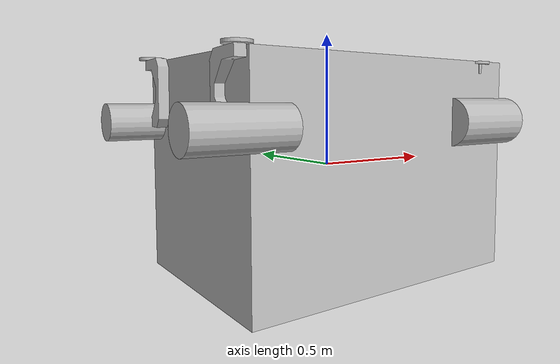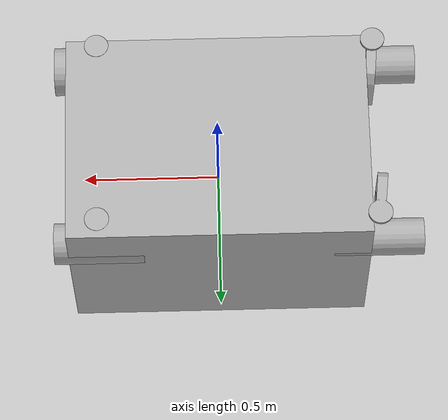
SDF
<sdf version="1.9">
<model name="rover2025" canonical_link="robot_base"> <link name="robot_base">
    <inertial>
      <mass>21.8</mass> <pose>0 0 0.35 0 0 0</pose> <inertia> <ixx>2.21</ixx> <ixy>0.0</ixy> <ixz>0.0</ixz>
        <iyy>3.30</iyy> <iyz>0.0</iyz>
        <izz>3.27</izz>
      </inertia>
    </inertial>
    <collision name="base_collision">
        <pose>0 0 0.39282 0 0 0</pose> <geometry>
            <box><size>1.09671 0.77336 0.78564</size></box>
        </geometry>
        <surface><contact><ode/></contact><friction><ode><mu>1.0</mu><mu2>1.0</mu2></ode></friction></surface>
    </collision>
    <visual name="body">
      <pose>-0.00000 -0.00000 0.00050 -0.00000 0.00000 -0.00000</pose>
      <geometry>
        <box><size>1.09671 0.77336 0.78564</size></box>
      </geometry>
      </visual>
  </link>

  <link name="gps_link">
     <inertial> <mass>0.1</mass> <inertia><ixx>1e-5</ixx><iyy>1e-5</iyy><izz>1e-5</izz></inertia> </inertial>
     <sensor name="gps_sensor" type="gps">
       <always_on>1</always_on>
       <visualize>true</visualize> <update_rate>10</update_rate>
       <plugin name="gps_plugin" filename="libgazebo_ros_gps_sensor.so">
         <ros>
           <namespace>/rover</namespace>
           <topic>/gps/fix</topic>
           <frame_id>gps_link</frame_id>
         </ros>
         </plugin>
     </sensor>
  </link>

  <joint name="gps_joint" type="fixed">
    <pose relative_to="robot_base">0.09323 0.00000 0.65793 0 0 0</pose> <parent>robot_base</parent>
    <child>gps_link</child>
  </joint>

  <link name="imu_link">
    <inertial> <mass>0.1</mass> <inertia><ixx>1e-5</ixx><iyy>1e-5</iyy><izz>1e-5</izz></inertia> </inertial>
    <sensor name="imu_sensor" type="imu">
      <always_on>1</always_on>
      <visualize>true</visualize> <update_rate>100</update_rate>
      <plugin name="imu_plugin" filename="libgazebo_ros_imu_sensor.so">
         <ros>
           <namespace>/rover</namespace>
           <topic>/imu/data</topic>
           <frame_id>imu_link</frame_id>
         </ros>
         <initial_orientation_as_reference>false</initial_orientation_as_reference>
         </plugin>
    </sensor>
  </link>

  <joint name="imu_joint" type="fixed">
    <pose relative_to="robot_base">0.0 0.0 0.43039 0 0 0</pose>
    <parent>robot_base</parent>
    <child>imu_link</child>
  </joint>

  <link name="front_right_steering_link">
    <pose relative_to="robot_base">-0.57753 0.32063 0.32476 0 0 -3.14159</pose>
    <inertial>
      <mass>4.0</mass> <pose>0 0 0 0 0 0</pose> <inertia> <ixx>0.05</ixx> <ixy>0.0</ixy> <ixz>0.0</ixz>
        <iyy>0.05</iyy> <iyz>0.0</iyz>
        <izz>0.05</izz>
      </inertia>
    </inertial>
     <collision name="steering_fr_collision">
        <pose>-0.00377 0.00334 0.07903 0 0 1.57080</pose> <geometry><box><size>0.1 0.1 0.15</size></box></geometry> <surface><contact><ode/></contact><friction><ode><mu>1.0</mu><mu2>1.0</mu2></ode></friction></surface>
    </collision>
    <visual name="bone-r-1">
      <pose>-0.00377 0.00334 0.07903 0.00000 0.00000 1.57080</pose>
      <geometry>
        <mesh><uri>../meshes/stl/Science.422.stl</uri><scale>1 1 1</scale></mesh>
      </geometry>
    </visual>
  </link>

  <joint name="front_right_steering_joint" type="revolute">
    <parent>robot_base</parent>
    <child>front_right_steering_link</child>
    <axis>
      <xyz>0 0 1</xyz>
      <limit>
        <lower>-2.96706</lower>
        <upper>2.96706</upper>
        <effort>100.0</effort> <velocity>10.0</velocity> </limit>
      <dynamics> <damping>0.1</damping> <friction>0.1</friction> </dynamics> </axis>
  </joint>

  <link name="front_right_wheel_link">
      <pose relative_to="front_right_steering_link">0 0 -0.15555 0 0 0</pose>
      <inertial>
        <mass>3.0</mass> <pose>0 0 0 0 1.5708 0</pose> <inertia> <ixx>0.031</ixx> <ixy>0.0</ixy> <ixz>0.0</ixz>
            <iyy>0.007</iyy> <iyz>0.0</iyz>
            <izz>0.031</izz>
        </inertia>
      </inertial>
      <collision name="wheel_fr_collision">
        <pose>0 0 0 0 1.5708 0</pose> <geometry>
          <cylinder><radius>0.06742</radius><length>0.32599</length></cylinder>
        </geometry>
        <surface> <friction><ode><mu>1.2</mu><mu2>1.0</mu2><slip1>0.0</slip1><slip2>0.0</slip2></ode></friction>
            <contact><ode><kp>1000000.0</kp><kd>100.0</kd><min_depth>0.001</min_depth></ode></contact>
        </surface>
      </collision>
      <visual name="wheel-r-1">
        <pose>0 0 0 0 1.5708 0</pose> <geometry>
          <cylinder><radius>0.06742</radius><length>0.32599</length></cylinder>
        </geometry>
        </visual>
  </link>

  <joint name="front_right_wheel_joint" type="continuous">
    <parent>front_right_steering_link</parent>
    <child>front_right_wheel_link</child>
    <axis>
      <xyz>0 1 0</xyz> <limit>
         <effort>100.0</effort> <velocity>10.0</velocity> </limit>
      <dynamics> <damping>0.1</damping> <friction>0.1</friction> </dynamics>
    </axis>
  </joint>

  <link name="front_left_steering_link">
      <pose relative_to="robot_base">-0.57753 -0.37063 0.32476 0 0 0</pose>
      <inertial><mass>4.0</mass><pose>0 0 0 0 0 0</pose><inertia><ixx>0.05</ixx><iyy>0.05</iyy><izz>0.05</izz></inertia></inertial>
      <collision name="steering_fl_collision"><pose>0.00364 0.00244 0.07904 0 0 1.57080</pose><geometry><box><size>0.1 0.1 0.15</size></box></geometry><surface><contact><ode/></contact><friction><ode><mu>1.0</mu><mu2>1.0</mu2></ode></friction></surface></collision>
      <visual name="bone-l-1"><pose>0.00364 0.00244 0.07904 0 0 1.57080</pose><geometry><mesh><uri>../meshes/stl/Science.483.stl</uri><scale>1 1 1</scale></mesh></geometry></visual>
  </link>
  <joint name="front_left_steering_joint" type="revolute">
      <parent>robot_base</parent><child>front_left_steering_link</child>
      <axis><xyz>0 0 1</xyz><limit><lower>-2.96706</lower><upper>2.96706</upper><effort>100.0</effort><velocity>10.0</velocity></limit><dynamics><damping>0.1</damping><friction>0.1</friction></dynamics></axis>
  </joint>
  <link name="front_left_wheel_link">
      <pose relative_to="front_left_steering_link">0 0 -0.15555 0 0 0</pose>
      <inertial><mass>3.0</mass><pose>0 0 0 0 1.5708 0</pose><inertia><ixx>0.031</ixx><iyy>0.007</iyy><izz>0.031</izz></inertia></inertial>
      <collision name="wheel_fl_collision"><pose>0 0 0 0 1.5708 0</pose><geometry><cylinder><radius>0.07091</radius><length>0.32602</length></cylinder></geometry><surface><friction><ode><mu>1.2</mu><mu2>1.0</mu2><slip1>0.0</slip1><slip2>0.0</slip2></ode></friction><contact><ode><kp>1000000.0</kp><kd>100.0</kd><min_depth>0.001</min_depth></ode></contact></surface></collision>
      <visual name="wheel-l-1"><pose>0 0 0 0 1.5708 0</pose><geometry><cylinder><radius>0.07091</radius><length>0.32602</length></cylinder></geometry></visual>
  </link>
  <joint name="front_left_wheel_joint" type="continuous">
      <parent>front_left_steering_link</parent><child>front_left_wheel_link</child>
      <axis><xyz>0 1 0</xyz><limit><effort>100.0</effort><velocity>10.0</velocity></limit><dynamics><damping>0.1</damping><friction>0.1</friction></dynamics></axis>
  </joint>

  <link name="rear_left_steering_link">
      <pose relative_to="robot_base">0.43705 -0.37063 0.32476 0 0 0</pose>
      <inertial><mass>4.0</mass><pose>0 0 0 0 0 0</pose><inertia><ixx>0.05</ixx><iyy>0.05</iyy><izz>0.05</izz></inertia></inertial>
      <collision name="steering_rl_collision"><pose>-0.00056 0.00243 0.06913 0 0 -1.57080</pose><geometry><box><size>0.1 0.1 0.15</size></box></geometry><surface><contact><ode/></contact><friction><ode><mu>1.0</mu><mu2>1.0</mu2></ode></friction></surface></collision>
      <visual name="bone-l-2"><pose>-0.00056 0.00243 0.06913 0 0 -1.57080</pose><geometry><mesh><uri>../meshes/stl/Science.479.stl</uri><scale>1 1 1</scale></mesh></geometry></visual>
  </link>
  <joint name="rear_left_steering_joint" type="revolute">
      <parent>robot_base</parent><child>rear_left_steering_link</child>
      <axis><xyz>0 0 1</xyz><limit><lower>-2.96706</lower><upper>2.96706</upper><effort>100.0</effort><velocity>10.0</velocity></limit><dynamics><damping>0.1</damping><friction>0.1</friction></dynamics></axis>
  </joint>
   <link name="rear_left_wheel_link">
      <pose relative_to="rear_left_steering_link">0 0 -0.15555 0 0 0</pose>
      <inertial><mass>3.0</mass><pose>0 0 0 0 1.5708 0</pose><inertia><ixx>0.031</ixx><iyy>0.007</iyy><izz>0.031</izz></inertia></inertial> <collision name="wheel_rl_collision"><pose>0 0 0 0 1.5708 0</pose><geometry><cylinder><radius>0.08897</radius><length>0.32599</length></cylinder></geometry><surface><friction><ode><mu>1.2</mu><mu2>1.0</mu2><slip1>0.0</slip1><slip2>0.0</slip2></ode></friction><contact><ode><kp>1000000.0</kp><kd>100.0</kd><min_depth>0.001</min_depth></ode></contact></surface></collision>
      <visual name="wheel-l-2"><pose>0 0 0 0 1.5708 0</pose><geometry><cylinder><radius>0.08897</radius><length>0.32599</length></cylinder></geometry></visual>
  </link>
  <joint name="rear_left_wheel_joint" type="continuous">
      <parent>rear_left_steering_link</parent><child>rear_left_wheel_link</child>
      <axis><xyz>0 1 0</xyz><limit><effort>100.0</effort><velocity>10.0</velocity></limit><dynamics><damping>0.1</damping><friction>0.1</friction></dynamics></axis>
  </joint>

  <link name="rear_right_steering_link">
      <pose relative_to="robot_base">0.43705 0.32063 0.32476 0 0 -3.14159</pose>
      <inertial><mass>4.0</mass><pose>0 0 0 0 0 0</pose><inertia><ixx>0.05</ixx><iyy>0.05</iyy><izz>0.05</izz></inertia></inertial>
      <collision name="steering_rr_collision"><pose>0.00033 0.00341 0.06913 0 0 -1.57080</pose><geometry><box><size>0.1 0.1 0.15</size></box></geometry><surface><contact><ode/></contact><friction><ode><mu>1.0</mu><mu2>1.0</mu2></ode></friction></surface></collision>
      <visual name="bone-r-2"><pose>0.00033 0.00341 0.06913 0 0 -1.57080</pose><geometry><mesh><uri>../meshes/stl/Science.488.stl</uri><scale>1 1 1</scale></mesh></geometry></visual>
  </link>
   <joint name="rear_right_steering_joint" type="revolute">
      <parent>robot_base</parent><child>rear_right_steering_link</child>
      <axis><xyz>0 0 1</xyz><limit><lower>-2.96706</lower><upper>2.96706</upper><effort>100.0</effort><velocity>10.0</velocity></limit><dynamics><damping>0.1</damping><friction>0.1</friction></dynamics></axis>
  </joint>
  <link name="rear_right_wheel_link">
      <pose relative_to="rear_right_steering_link">0 0 -0.15555 0 0 0</pose>
      <inertial><mass>3.0</mass><pose>0 0 0 0 1.5708 0</pose><inertia><ixx>0.031</ixx><iyy>0.007</iyy><izz>0.031</izz></inertia></inertial> <collision name="wheel_rr_collision"><pose>0 0 0 0 1.5708 0</pose><geometry><cylinder><radius>0.07492</radius><length>0.32598</length></cylinder></geometry><surface><friction><ode><mu>1.2</mu><mu2>1.0</mu2><slip1>0.0</slip1><slip2>0.0</slip2></ode></friction><contact><ode><kp>1000000.0</kp><kd>100.0</kd><min_depth>0.001</min_depth></ode></contact></surface></collision>
      <visual name="wheel-r-2"><pose>0 0 0 0 1.5708 0</pose><geometry><cylinder><radius>0.07492</radius><length>0.32598</length></cylinder></geometry></visual>
  </link>
   <joint name="rear_right_wheel_joint" type="continuous">
      <parent>rear_right_steering_link</parent><child>rear_right_wheel_link</child>
      <axis><xyz>0 1 0</xyz><limit><effort>100.0</effort><velocity>10.0</velocity></limit><dynamics><damping>0.1</damping><friction>0.1</friction></dynamics></axis>
  </joint>

  <plugin name="gazebo_ros_control" filename="libgazebo_ros_control.so">
    <ros>
        <namespace>/rover</namespace>
    </ros>
    <robotSimType>gazebo_ros_control/DefaultRobotHWSim</robotSimType>
    <legacyModeNS>true</legacyModeNS> </plugin>

  <transmission name="tran_front_right_steering">
    <type>transmission_interface/SimpleTransmission</type>
    <joint name="front_right_steering_joint">
      <hardwareInterface>hardware_interface/EffortJointInterface</hardwareInterface> </joint>
    <actuator name="motor_front_right_steering">
      <hardwareInterface>hardware_interface/EffortJointInterface</hardwareInterface>
      <mechanicalReduction>1</mechanicalReduction>
    </actuator>
  </transmission>
   <transmission name="tran_front_left_steering">
    <type>transmission_interface/SimpleTransmission</type>
    <joint name="front_left_steering_joint"><hardwareInterface>hardware_interface/EffortJointInterface</hardwareInterface></joint>
    <actuator name="motor_front_left_steering"><hardwareInterface>hardware_interface/EffortJointInterface</hardwareInterface><mechanicalReduction>1</mechanicalReduction></actuator>
  </transmission>
   <transmission name="tran_rear_left_steering">
    <type>transmission_interface/SimpleTransmission</type>
    <joint name="rear_left_steering_joint"><hardwareInterface>hardware_interface/EffortJointInterface</hardwareInterface></joint>
    <actuator name="motor_rear_left_steering"><hardwareInterface>hardware_interface/EffortJointInterface</hardwareInterface><mechanicalReduction>1</mechanicalReduction></actuator>
  </transmission>
   <transmission name="tran_rear_right_steering">
    <type>transmission_interface/SimpleTransmission</type>
    <joint name="rear_right_steering_joint"><hardwareInterface>hardware_interface/EffortJointInterface</hardwareInterface></joint>
    <actuator name="motor_rear_right_steering"><hardwareInterface>hardware_interface/EffortJointInterface</hardwareInterface><mechanicalReduction>1</mechanicalReduction></actuator>
  </transmission>

  <transmission name="tran_front_right_wheel">
    <type>transmission_interface/SimpleTransmission</type>
    <joint name="front_right_wheel_joint">
      <hardwareInterface>hardware_interface/VelocityJointInterface</hardwareInterface> </joint>
    <actuator name="motor_front_right_wheel">
      <hardwareInterface>hardware_interface/VelocityJointInterface</hardwareInterface>
      <mechanicalReduction>1</mechanicalReduction>
    </actuator>
  </transmission>
   <transmission name="tran_front_left_wheel">
    <type>transmission_interface/SimpleTransmission</type>
    <joint name="front_left_wheel_joint"><hardwareInterface>hardware_interface/VelocityJointInterface</hardwareInterface></joint>
    <actuator name="motor_front_left_wheel"><hardwareInterface>hardware_interface/VelocityJointInterface</hardwareInterface><mechanicalReduction>1</mechanicalReduction></actuator>
  </transmission>
   <transmission name="tran_rear_left_wheel">
    <type>transmission_interface/SimpleTransmission</type>
    <joint name="rear_left_wheel_joint"><hardwareInterface>hardware_interface/VelocityJointInterface</hardwareInterface></joint>
    <actuator name="motor_rear_left_wheel"><hardwareInterface>hardware_interface/VelocityJointInterface</hardwareInterface><mechanicalReduction>1</mechanicalReduction></actuator>
  </transmission>
   <transmission name="tran_rear_right_wheel">
    <type>transmission_interface/SimpleTransmission</type>
    <joint name="rear_right_wheel_joint"><hardwareInterface>hardware_interface/VelocityJointInterface</hardwareInterface></joint>
    <actuator name="motor_rear_right_wheel"><hardwareInterface>hardware_interface/VelocityJointInterface</hardwareInterface><mechanicalReduction>1</mechanicalReduction></actuator>
  </transmission>

  </model>
</sdf>
